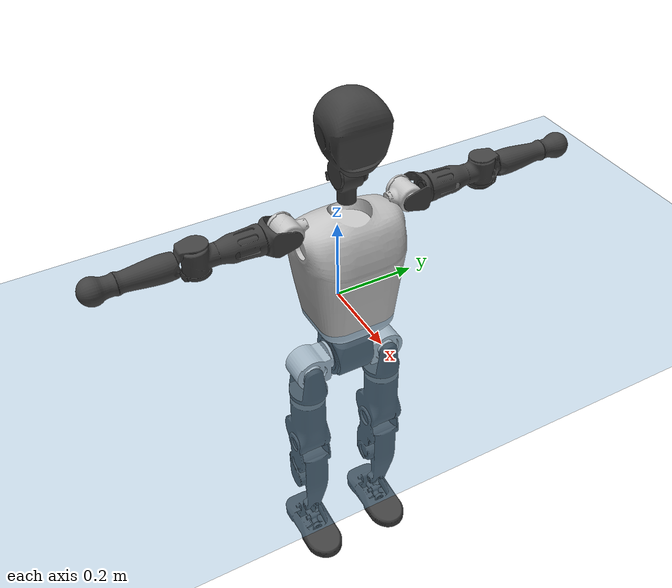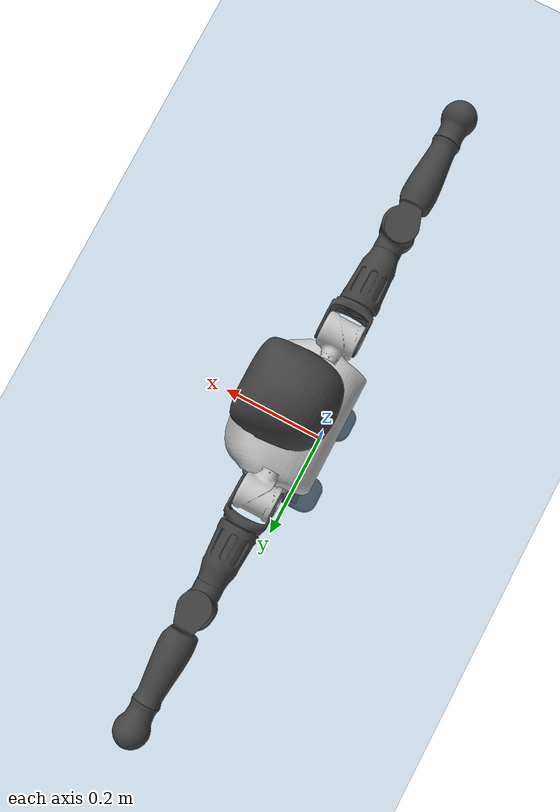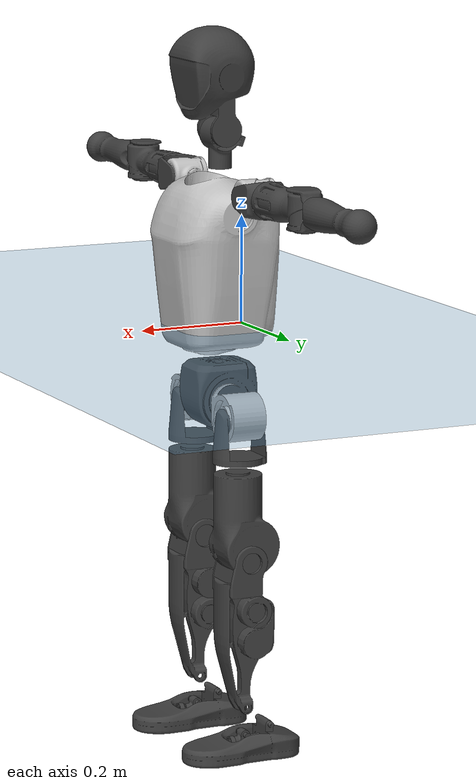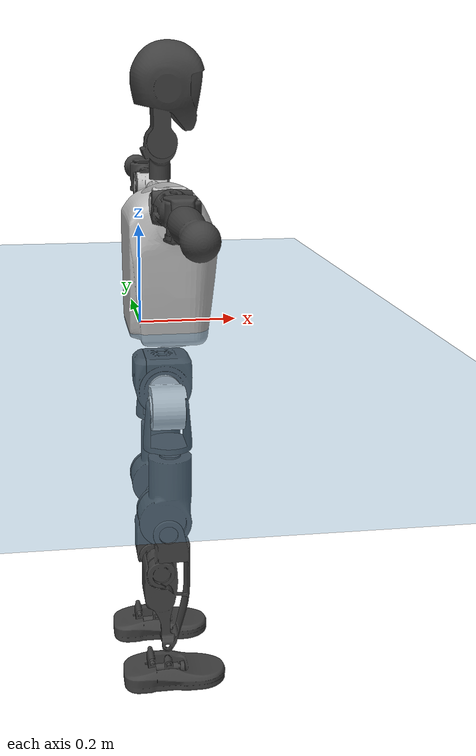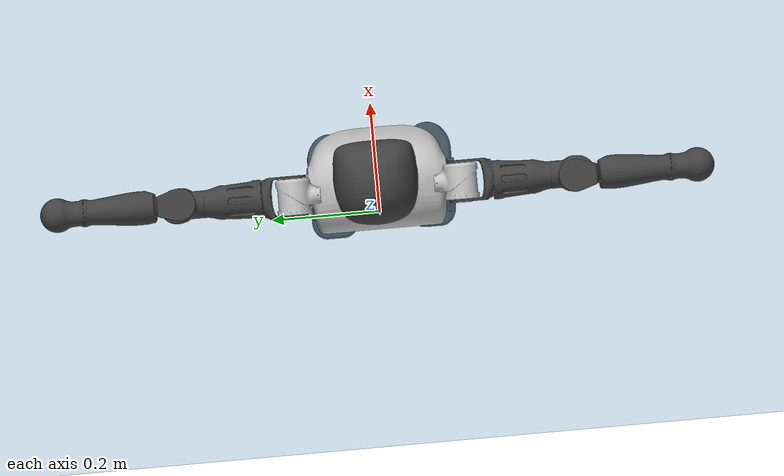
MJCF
<mujoco model="T1">
  <compiler angle="radian" assetdir="assets" balanceinertia="true" inertiafromgeom="false"/>

  <option timestep="0.005" density="1.2" viscosity="2e-05"/>

  <size nkey="1"/>

  <visual>
    <quality shadowsize="8192"/>
    <map shadowclip="0.5"/>
  </visual>

  <default>
    <default class="/">
      <joint armature="0.01" damping="0.01" frictionloss="0.1"/>
      <geom contype="0" conaffinity="0" group="1" solref="-1000 -80"/>
      <site size="0.01 0.005 0.005" group="5"/>
      <general forcelimited="true" biastype="affine" gainprm="25" biasprm="0 -25 -0.6"/>
      <default class="t1">
        <geom rgba="0.25 0.25 0.25 1"/>
        <default class="visual">
          <geom type="mesh" group="2"/>
        </default>
        <default class="collision">
          <geom group="3"/>
        </default>
        <default class="foot">
          <geom size="0.1115 0.05 0.015" type="box" condim="6" group="4" priority="1" solimp="0.015 1 0.015"/>
        </default>
        <default class="reward_collision_sphere">
          <geom group="5" rgba="1 0 0 1"/>
        </default>
      </default>
    </default>
  </default>

  <asset>
    <texture type="skybox" colorspace="auto" name="//unnamed_texture_0" builtin="gradient" rgb1="0.95 0.95 0.95" rgb2="0.95 0.95 0.95" width="100" height="600"/>
    <texture type="2d" colorspace="auto" name="texplane" builtin="checker" rgb1="0.345 0.575 0.748" rgb2="0.345 0.575 0.748" markrgb="1 1 1" width="512" height="512"/>
    <material name="MatPlane" class="/" texture="texplane" texuniform="true" texrepeat="2 2" specular="0.9"/>
    <mesh name="Trunk" class="/" file="Trunk.stl"/>
    <mesh name="H1" class="/" file="H1.stl"/>
    <mesh name="H2" class="/" file="H2.stl"/>
    <mesh name="AL1" class="/" file="AL1.stl"/>
    <mesh name="AL2" class="/" file="AL2.stl"/>
    <mesh name="AL3" class="/" file="AL3.stl"/>
    <mesh name="left_hand_link" class="/" file="left_hand_link.stl"/>
    <mesh name="AR1" class="/" file="AR1.stl"/>
    <mesh name="AR2" class="/" file="AR2.stl"/>
    <mesh name="AR3" class="/" file="AR3.stl"/>
    <mesh name="right_hand_link" class="/" file="right_hand_link.stl"/>
    <mesh name="Waist" class="/" file="Waist.stl"/>
    <mesh name="Hip_Pitch_Left" class="/" file="Hip_Pitch_Left.stl"/>
    <mesh name="Hip_Roll_Left" class="/" file="Hip_Roll_Left.stl"/>
    <mesh name="Hip_Yaw_Left" class="/" file="Hip_Yaw_Left.stl"/>
    <mesh name="Shank_Left" class="/" file="Shank_Left.stl"/>
    <mesh name="Ankle_Cross_Left" class="/" file="Ankle_Cross_Left.stl"/>
    <mesh name="left_foot_link" class="/" file="left_foot_link.stl"/>
    <mesh name="Hip_Pitch_Right" class="/" file="Hip_Pitch_Right.stl"/>
    <mesh name="Hip_Roll_Right" class="/" file="Hip_Roll_Right.stl"/>
    <mesh name="Hip_Yaw_Right" class="/" file="Hip_Yaw_Right.stl"/>
    <mesh name="Shank_Right" class="/" file="Shank_Right.stl"/>
    <mesh name="Ankle_Cross_Right" class="/" file="Ankle_Cross_Right.stl"/>
    <mesh name="right_foot_link" class="/" file="right_foot_link.stl"/>
  </asset>

  <worldbody>
    <geom name="floor" class="/" size="100 100 0.125" type="plane" group="0" material="MatPlane"/>
    <light name="toplight_shadow" class="/" pos="0 0 5" dir="0.0990148 0.0990148 -0.990148" type="directional" ambient="0.04 0.04 0.04" diffuse="0.55 0.55 0.55" specular="0.12 0.12 0.12"/>
    <light name="toplight_fill" class="/" pos="0 0 5" dir="0.0990148 0.0990148 -0.990148" type="directional" castshadow="false" ambient="0.04 0.04 0.04" diffuse="0.3 0.3 0.3" specular="0.08 0.08 0.08"/>
    <body name="trunk" childclass="t1" pos="0.000687063 -0.00241159 -6.05671e-05" quat="0.999999 -0.000759929 0.00066566 -0.000269656">
      <inertial pos="0.0370162 -0.00345778 0.122707" quat="0.999973 -0.00100427 -0.00636823 0.00360334" mass="9.71339" diaginertia="0.0186489 0.0557887 0.127828"/>
      <joint name="//unnamed_joint_0" type="free" armature="0" damping="0" frictionloss="0"/>
      <geom name="//unnamed_geom_1" class="visual" rgba="0.76 0.76 0.76 1" mesh="Trunk"/>
      <geom name="//unnamed_geom_2" class="collision" size="0.0715542 0.0954056 0.143108" pos="0.0437142 0 0.142525" type="box"/>
      <geom name="//unnamed_geom_3" class="reward_collision_sphere" size="0.109716" pos="0.0437142 0 0.118771"/>
      <geom name="//unnamed_geom_4" class="reward_collision_sphere" size="0.0143108" pos="0.0437142 0.0804002 0"/>
      <geom name="//unnamed_geom_5" class="reward_collision_sphere" size="0.0143108" pos="0.0437142 -0.0804002 0"/>
      <geom name="//unnamed_geom_6" class="reward_collision_sphere" size="0.0143108" pos="0.0437142 0.10121 0.213788"/>
      <geom name="//unnamed_geom_7" class="reward_collision_sphere" size="0.0143108" pos="0.0437142 -0.10121 0.213788"/>
      <site name="imu" pos="0.0141841 0.000212358 -0.0141895" size="0.00954056"/>
      <camera name="track" pos="0 -1.89177 0" quat="0.707107 0.707107 0 0" mode="trackcom"/>
      <camera name="ego_camera" pos="0.0888856 0 0.498839" quat="-0.5 -0.5 0.5 0.5"/>
      <body name="H1" pos="0.0421359 0.00195006 0.289908" quat="1 -2.76805e-05 -0.000747607 -0.000372334">
        <inertial pos="-0.00409883 0.000309883 0.0703602" quat="0.757394 -0.0145128 -0.00252328 0.652791" mass="0.393361" diaginertia="5.06025e-05 0.000169859 0.000336936"/>
        <joint name="AAHead_yaw" pos="0 0 0" axis="0.00675478 -0.00753333 0.999949" stiffness="0.00416889" range="-1.58565 1.58332" armature="0.00820121" damping="0.011472" frictionloss="0.0937114"/>
        <geom name="//unnamed_geom_8" class="visual" mesh="H1"/>
        <body name="H2" pos="0.00192111 0.00183546 0.0717243" quat="1 2.9479e-05 2.67532e-05 0.000244217">
          <inertial pos="0.00724731 0.00315405 0.117961" quat="0.988301 0.107715 -0.0764605 -0.0762375" mass="0.556937" diaginertia="0.000436414 0.00149142 0.00411424"/>
          <joint name="Head_pitch" pos="0 0 0" axis="-0.00163503 -0.999953 -0.00953378" range="-1.22036 0.348785" armature="0.00859115" damping="0.0106568" frictionloss="0.100714"/>
          <geom name="//unnamed_geom_9" class="visual" mesh="H2"/>
          <geom name="//unnamed_geom_10" class="collision" size="0.0763245" pos="0.00728571 0 0.130648"/>
          <geom name="//unnamed_geom_11" class="reward_collision_sphere" size="0.085865" pos="0.0145714 0 0.118771"/>
        </body>
      </body>
      <body name="AL1" pos="0.0412724 0.102249 0.258566" quat="1 -0.000186661 0.000469783 -0.000167761">
        <inertial pos="-0.00258987 0.0410916 -0.00069167" quat="0.505491 0.498411 -0.504607 0.491362" mass="0.462184" diaginertia="0.000284394 0.000990971 0.000672836"/>
        <joint name="Left_Shoulder_Pitch" pos="0 0 0" axis="0.00162037 0.999953 -0.00960315" stiffness="0.00662623" range="-3.30657 1.17347" armature="0.00977833" damping="0.0102059" frictionloss="0.0978042"/>
        <geom name="//unnamed_geom_12" class="visual" rgba="0.76 0.76 0.76 1" mesh="AL1"/>
        <body name="AL2" pos="0.000526886 0.0447663 -0.00292697" quat="1 2.08548e-05 -6.73924e-05 3.5383e-05">
          <inertial pos="0.00510051 0.0334797 -0.00284185" quat="0.492426 0.503348 -0.497017 0.507081" mass="0.136873" diaginertia="8.25893e-05 0.000262346 0.000413026"/>
          <joint name="Left_Shoulder_Roll" pos="0 0 0" axis="-0.999942 -0.00382051 0.0100897" range="-1.56755 1.72205" armature="0.00945327" damping="0.00765575" frictionloss="0.0929227"/>
          <geom name="//unnamed_geom_13" class="visual" mesh="AL2"/>
          <body name="AL3" pos="0.00111634 0.05796 0.00232719" quat="1 3.70794e-05 -0.000215596 -5.92745e-05">
            <inertial pos="-0.00334369 0.0805487 -0.00081481" quat="0.702633 0.711512 -7.23845e-05 0.00759488" mass="0.896043" diaginertia="0.002736 0.00973184 0.00145537"/>
            <joint name="Left_Elbow_Pitch" pos="0 0 0" axis="-0.00176715 -0.999995 -0.0024562" range="-2.29527 2.28154" armature="0.00947837" damping="0.015126" frictionloss="0.103489"/>
            <geom name="//unnamed_geom_14" class="visual" mesh="AL3"/>
            <geom name="//unnamed_geom_15" class="collision" size="0.0286217 0.0715542" pos="0 0.0472942 0" quat="0.707105 0.707108 0 0" type="cylinder"/>
            <geom name="//unnamed_geom_16" class="reward_collision_sphere" size="0.034346"/>
            <body name="left_hand_link" pos="0.00264702 0.142242 0.0033768" quat="1 -5.53746e-06 0.000132219 -0.00024228">
              <inertial pos="0.00211842 0.100795 -0.00207163" quat="0.709761 0.704422 0.000424497 -0.00533938" mass="0.284047" diaginertia="0.00167886 0.00621553 0.000525893"/>
              <joint name="Left_Elbow_Yaw" pos="0 0 0" axis="0.00746138 -0.00451469 0.999962" range="-2.43706 -0.00299083" armature="0.0109939" damping="0.0229773" frictionloss="0.0958436"/>
              <geom name="//unnamed_geom_17" class="visual" mesh="left_hand_link"/>
              <geom name="//unnamed_geom_18" class="collision" size="0.0286217 0.0834799" pos="0 0.122965 0" quat="0.707105 0.707108 0 0" type="cylinder"/>
              <geom name="//unnamed_geom_19" class="reward_collision_sphere" size="0.0477028"/>
              <geom name="//unnamed_geom_20" class="reward_collision_sphere" size="0.033392" pos="0 0.104047 0"/>
              <geom name="//unnamed_geom_21" class="reward_collision_sphere" size="0.033392" pos="0 0.203365 0"/>
            </body>
          </body>
        </body>
      </body>
      <body name="AR1" pos="0.0434749 -0.0976031 0.260588" quat="1 -0.000257147 0.000723687 -0.000329868">
        <inertial pos="1.74271e-06 -0.044812 0.002066" quat="0.504098 0.495752 -0.504745 0.495326" mass="0.469638" diaginertia="0.000277304 0.00101529 0.000706211"/>
        <joint name="Right_Shoulder_Pitch" pos="0 0 0" axis="-0.00282703 -0.999996 -0.000691588" stiffness="0.00023642" range="-1.17063 3.31933" armature="0.00897774" damping="0.019045" frictionloss="0.0854244"/>
        <geom name="//unnamed_geom_22" class="visual" rgba="0.76 0.76 0.76 1" mesh="AR1"/>
        <body name="AR2" pos="0.000421724 -0.0453593 -0.00212746" quat="0.999999 0.000245738 -0.00126081 0.000634373">
          <inertial pos="0.000932379 -0.0346157 0.000122739" quat="0.509688 0.493429 -0.518751 0.477119" mass="0.134481" diaginertia="7.91874e-05 0.000260184 0.000399937"/>
          <joint name="Right_Shoulder_Roll" pos="0 0 0" axis="-0.999991 -0.00353229 0.00238103" range="-1.78277 1.52689" armature="0.00964222" damping="0" frictionloss="0.0999251"/>
          <geom name="//unnamed_geom_23" class="visual" mesh="AR2"/>
          <body name="AR3" pos="-0.00347666 -0.0570924 0.000861774" quat="0.999999 0.000982482 -0.000200243 -0.000701483">
            <inertial pos="0.000838371 -0.0816636 0.00218165" quat="0.707013 0.707198 -0.000534671 0.00164148" mass="0.880692" diaginertia="0.00266651 0.00954887 0.00143594"/>
            <joint name="Right_Elbow_Pitch" pos="0 0 0" axis="-0.00282922 0.99992 0.0123317" range="-2.30306 2.25122" armature="0.00947206" damping="0.00831297" frictionloss="0.106684"/>
            <geom name="//unnamed_geom_24" class="visual" mesh="AR3"/>
            <geom name="//unnamed_geom_25" class="collision" size="0.0286217 0.0715542" pos="0 -0.0472942 0" quat="0.707105 0.707108 0 0" type="cylinder"/>
            <geom name="//unnamed_geom_26" class="reward_collision_sphere" size="0.034346"/>
            <body name="right_hand_link" pos="-0.00374257 -0.141869 0.00206655" quat="0.999999 0.00029732 -0.00131173 -0.000380806">
              <inertial pos="0.00123376 -0.102069 -0.00157146" quat="0.70518 0.709025 -0.000709391 0.00196903" mass="0.282185" diaginertia="0.0016259 0.00584117 0.000512368"/>
              <joint name="Right_Elbow_Yaw" pos="0 0 0" axis="0.00125339 -0.00189013 0.999997" range="-0.000945705 2.38816" armature="0.00888491" damping="0.00992941" frictionloss="0.0959222"/>
              <geom name="//unnamed_geom_27" class="visual" mesh="right_hand_link"/>
              <geom name="//unnamed_geom_28" class="collision" size="0.0286217 0.0834799" pos="0 -0.122965 0" quat="0.707105 0.707108 0 0" type="cylinder"/>
              <geom name="//unnamed_geom_29" class="reward_collision_sphere" size="0.0477028"/>
              <geom name="//unnamed_geom_30" class="reward_collision_sphere" size="0.033392" pos="0 -0.104047 0"/>
              <geom name="//unnamed_geom_31" class="reward_collision_sphere" size="0.033392" pos="0 -0.203365 0"/>
            </body>
          </body>
        </body>
      </body>
      <body name="Waist" pos="0.0439906 -0.00203004 -0.134427" quat="1 9.15523e-05 1.49875e-05 -2.77681e-05">
        <inertial pos="0.0023627 0.00220441 0.0095469" quat="0.983545 -0.00839492 -0.180273 -0.00840444" mass="2.09259" diaginertia="0.00105308 0.00374783 0.0104445"/>
        <joint name="Waist" pos="0 0 0" axis="0.00637154 -0.000842549 0.999979" range="-1.61394 1.53262" armature="0.00891948" damping="0.00452084" frictionloss="0.108213"/>
        <geom name="//unnamed_geom_32" class="visual" mesh="Waist"/>
        <body name="Hip_Pitch_Left" pos="0.00426276 0.0985012 -0.001111" quat="1 0.000433791 0.00035312 -0.000332991">
          <inertial pos="-0.000970041 -0.00792988 -0.023943" quat="0.974361 0.224688 0.0112696 -0.00294887" mass="0.850034" diaginertia="0.000360443 0.0010756 0.00287374"/>
          <joint name="Left_Hip_Pitch" pos="0 0 0" axis="0.00185933 0.99988 0.0153895" stiffness="0.0191307" range="-1.8083 1.62213" armature="0.00930394" damping="0" frictionloss="0.0952649"/>
          <geom name="//unnamed_geom_33" class="visual" rgba="0.76 0.76 0.76 1" mesh="Hip_Pitch_Left"/>
          <body name="Hip_Roll_Left" pos="0.00225416 0.00127001 -0.0268469" quat="1 -0.000122932 -5.97016e-06 -0.00010189">
            <inertial pos="0.00150776 -0.000652237 -0.0664004" quat="0.706396 -0.009774 -0.00321403 0.707742" mass="0.340933" diaginertia="0.00037911 0.00114956 0.00122673"/>
            <joint name="Left_Hip_Roll" pos="0 0 0" axis="-0.999914 -0.012561 0.00381533" range="-1.60656 0.243427" armature="0.00909626" damping="0.0170464" frictionloss="0.0904975"/>
            <geom name="//unnamed_geom_34" class="visual" mesh="Hip_Roll_Left"/>
            <geom name="//unnamed_geom_35" class="reward_collision_sphere" size="0.0524731"/>
            <body name="Hip_Yaw_Left" pos="0.00198085 0.00183858 -0.0974815" quat="1 4.49645e-05 0.000320474 -0.000183635">
              <inertial pos="-0.00729237 -0.000787897 -0.104866" quat="0.690417 -0.0295936 -0.0395705 0.721722" mass="1.87111" diaginertia="0.00552128 0.0192979 0.00649867"/>
              <joint name="Left_Hip_Yaw" pos="0 0 0" axis="0.000146304 0.000247854 -1" stiffness="0.00227339" range="-0.992955 1.02718" armature="0.0109241" damping="0.00852035" frictionloss="0.0977438"/>
              <geom name="//unnamed_geom_36" class="visual" mesh="Hip_Yaw_Left"/>
              <geom name="//unnamed_geom_37" class="collision" size="0.0477028 0.0763245" type="cylinder"/>
              <body name="Shank_Left" pos="-0.00921698 -0.000668267 -0.161383" quat="0.999999 0.000728328 -0.000439435 -0.000728924">
                <inertial pos="-0.00380043 0.000163732 -0.150268" quat="0.997521 0.000769869 -0.0244962 0.0659688" mass="1.48807" diaginertia="0.00707782 0.0248955 0.00409461"/>
                <joint name="Left_Knee_Pitch" pos="0 0 0" axis="0.00409718 0.99999 0.00175588" stiffness="0.00580553" range="0.0534528 2.33932" armature="0.00938402" damping="0" frictionloss="0.0915317"/>
                <geom name="//unnamed_geom_38" class="visual" mesh="Shank_Left"/>
                <geom name="//unnamed_geom_39" class="collision" size="0.0477028 0.0715542" pos="0 0 -0.142525" type="cylinder"/>
                <geom name="//unnamed_geom_40" class="reward_collision_sphere" size="0.0620136"/>
                <body name="Ankle_Cross_Left" pos="-0.00242003 -0.00170085 -0.335302" quat="1 -9.58823e-05 -3.99035e-05 -0.000138344">
                  <inertial pos="-0.00462766 0.00211463 -0.00980057" quat="0.440952 0.55173 0.552126 0.443071" mass="0.0615367" diaginertia="6.17719e-06 1.90991e-05 2.69085e-05"/>
                  <joint name="Left_Ankle_Pitch" pos="0 0 0" axis="0.0115144 0.999921 0.00496129" stiffness="0.00794203" range="-0.927513 0.350884" armature="0.0083416" damping="0.0180144" frictionloss="0.108126"/>
                  <geom name="//unnamed_geom_41" class="visual" mesh="Ankle_Cross_Left"/>
                  <body name="left_foot_link" pos="-0.00130137 0.00219241 -0.0129832" quat="1 -0.000772653 -0.000314986 0.000129019">
                    <inertial pos="-0.00218596 0.000367456 -0.0123939" quat="0.00955575 0.614011 0.000871416 0.78924" mass="0.581114" diaginertia="0.000579055 0.00182855 0.0054075"/>
                    <joint name="Left_Ankle_Roll" pos="0 0 0" axis="-0.999993 -0.00299145 0.00237526" range="-0.487097 0.400497" armature="0.0109015" damping="0.0188921" frictionloss="0.0850848"/>
                    <geom name="//unnamed_geom_42" class="visual" mesh="left_foot_link"/>
                    <geom name="left_foot" class="foot" size="0.105262 0.0431778 0.0150202" pos="0.00728571 0 -0.0178157"/>
                    <geom name="//unnamed_geom_44" class="reward_collision_sphere" size="0.0496109" pos="0.00728571 0 -0.0178157"/>
                    <geom name="//unnamed_geom_45" class="reward_collision_sphere" size="0.0286217" pos="0.0692142 -0.0217553 -0.0178157"/>
                    <geom name="//unnamed_geom_46" class="reward_collision_sphere" size="0.0286217" pos="-0.0509999 -0.0217553 -0.0178157"/>
                    <site name="left_foot" class="foot" pos="0.00728571 0 -0.0178157" size="0.00954056"/>
                  </body>
                </body>
              </body>
            </body>
          </body>
        </body>
        <body name="Hip_Pitch_Right" pos="-0.000138967 -0.103195 0.000770037" quat="0.999999 -0.000679351 -0.000724955 -0.000353798">
          <inertial pos="0.00197864 0.00440359 -0.01843" quat="0.972441 -0.232631 0.0154588 -0.00173871" mass="0.887004" diaginertia="0.000373744 0.00115361 0.00305957"/>
          <joint name="Right_Hip_Pitch" pos="0 0 0" axis="0.00286986 -0.999995 -0.00155445" range="-1.60036 1.7858" armature="0.0110287" damping="0.0074004" frictionloss="0.0861435"/>
          <geom name="//unnamed_geom_47" class="visual" rgba="0.76 0.76 0.76 1" mesh="Hip_Pitch_Right"/>
          <body name="Hip_Roll_Right" pos="0.00154478 -0.00224633 -0.0255212" quat="1 -7.27467e-05 -9.49674e-05 -7.21203e-05">
            <inertial pos="0.00225106 0.0014167 -0.0608574" quat="0.709426 -0.0072051 -0.00755976 0.704703" mass="0.354346" diaginertia="0.000368437 0.00122823 0.00125241"/>
            <joint name="Right_Hip_Roll" pos="0 0 0" axis="-0.999888 0.0104581 -0.0106968" stiffness="0.00465852" range="-0.202253 1.54161" armature="0.009169" damping="0" frictionloss="0.0865895"/>
            <geom name="//unnamed_geom_48" class="visual" mesh="Hip_Roll_Right"/>
            <geom name="//unnamed_geom_49" class="reward_collision_sphere" size="0.0524731"/>
            <body name="Hip_Yaw_Right" pos="0.00192659 -0.00346606 -0.0951921" quat="0.999999 0.000168859 -0.00108228 8.75747e-05">
              <inertial pos="-0.00406712 -0.00347405 -0.10334" quat="0.717144 -0.0318492 -0.0289992 0.695592" mass="1.922" diaginertia="0.00517125 0.0197692 0.00598778"/>
              <joint name="Right_Hip_Yaw" pos="0 0 0" axis="-0.00263783 0.00417228 -0.999988" stiffness="0.0129503" range="-1.00448 1.00781" armature="0.00811852" damping="0.0150963" frictionloss="0.0904149"/>
              <geom name="//unnamed_geom_50" class="visual" mesh="Hip_Yaw_Right"/>
              <geom name="//unnamed_geom_51" class="collision" size="0.0477028 0.0763245" type="cylinder"/>
              <body name="Shank_Right" pos="-0.00836995 0.00217546 -0.160906" quat="0.999999 0.000426184 0.00122163 -0.000793378">
                <inertial pos="-0.00211387 -0.00149744 -0.14584" quat="0.998855 -0.00192127 -0.0267658 -0.0396077" mass="1.48037" diaginertia="0.00730317 0.0257171 0.00470078"/>
                <joint name="Right_Knee_Pitch" pos="0 0 0" axis="0.00206035 -0.999997 0.00092079" range="-2.3524 0.0552293" armature="0.00943876" damping="0.019351" frictionloss="0.0997188"/>
                <geom name="//unnamed_geom_52" class="visual" mesh="Shank_Right"/>
                <geom name="//unnamed_geom_53" class="collision" size="0.0477028 0.0715542" pos="0 0 -0.142525" type="cylinder"/>
                <geom name="//unnamed_geom_54" class="reward_collision_sphere" size="0.0620136"/>
                <body name="Ankle_Cross_Right" pos="0.00356694 0.00134738 -0.333666" quat="0.999999 0.000396446 -0.00074931 -0.000861178">
                  <inertial pos="-0.00152726 0.0029163 -0.00913636" quat="0.442844 0.550953 0.551246 0.443246" mass="0.063927" diaginertia="5.9028e-06 1.95402e-05 2.59626e-05"/>
                  <joint name="Right_Ankle_Pitch" pos="0 0 0" axis="0.00899253 -0.999914 0.00953988" stiffness="0.00523112" range="-0.370915 0.874073" armature="0.00900509" damping="0.0111116" frictionloss="0.0990101"/>
                  <geom name="//unnamed_geom_55" class="visual" mesh="Ankle_Cross_Right"/>
                  <body name="right_foot_link" pos="0.0033128 -0.00201069 -0.0124107" quat="1 -8.60827e-05 5.18984e-05 -0.000132376">
                    <inertial pos="-0.000264 0.00261217 -0.0109631" quat="0.00779971 0.625012 0.00702056 0.780544" mass="0.622263" diaginertia="0.000570083 0.0018634 0.00542566"/>
                    <joint name="Right_Ankle_Roll" pos="0 0 0" axis="-1 -0.000351394 0.000503219" stiffness="0.00101908" range="-0.429832 0.386109" armature="0.00918772" damping="0.00819175" frictionloss="0.0875091"/>
                    <geom name="//unnamed_geom_56" class="visual" mesh="right_foot_link"/>
                    <geom name="right_foot" class="foot" size="0.0973911 0.0493861 0.0148236" pos="0.00728571 0 -0.0178157"/>
                    <geom name="//unnamed_geom_58" class="reward_collision_sphere" size="0.0381622"/>
                    <geom name="//unnamed_geom_59" class="reward_collision_sphere" size="0.0286217" pos="0.00728571 0 -0.0178157"/>
                    <geom name="//unnamed_geom_60" class="reward_collision_sphere" size="0.0286217" pos="0.0692142 0.0217553 -0.0178157"/>
                    <geom name="//unnamed_geom_61" class="reward_collision_sphere" size="0.0286217" pos="-0.0509999 0.0217553 -0.0178157"/>
                    <site name="right_foot" class="foot" pos="0.00728571 0 -0.0178157" size="0.00954056"/>
                  </body>
                </body>
              </body>
            </body>
          </body>
        </body>
      </body>
    </body>
  </worldbody>

  <contact>
    <pair class="/" geom1="floor" geom2="left_foot" name="//unnamed_contact_0"/>
    <pair class="/" geom1="floor" geom2="right_foot" name="//unnamed_contact_1"/>
  </contact>

  <actuator>
    <general name="AAHead_yaw" class="/" joint="AAHead_yaw" forcerange="-6.44122 6.44122" gainprm="22.8681" biasprm="0 -22.8681 -0.599577"/>
    <general name="Head_pitch" class="/" joint="Head_pitch" forcerange="-6.92962 6.92962" gainprm="22.8681" biasprm="0 -22.8681 -0.599577"/>
    <general name="Left_Shoulder_Pitch" class="/" joint="Left_Shoulder_Pitch" forcerange="-16.4653 16.4653" gainprm="22.8681" biasprm="0 -22.8681 -0.599577"/>
    <general name="Left_Shoulder_Roll" class="/" joint="Left_Shoulder_Roll" forcerange="-16.7067 16.7067" gainprm="22.8681" biasprm="0 -22.8681 -0.599577"/>
    <general name="Left_Elbow_Pitch" class="/" joint="Left_Elbow_Pitch" forcerange="-15.7353 15.7353" gainprm="22.8681" biasprm="0 -22.8681 -0.599577"/>
    <general name="Left_Elbow_Yaw" class="/" joint="Left_Elbow_Yaw" forcerange="-17.1787 17.1787" gainprm="22.8681" biasprm="0 -22.8681 -0.599577"/>
    <general name="Right_Shoulder_Pitch" class="/" joint="Right_Shoulder_Pitch" forcerange="-17.4671 17.4671" gainprm="22.8681" biasprm="0 -22.8681 -0.599577"/>
    <general name="Right_Shoulder_Roll" class="/" joint="Right_Shoulder_Roll" forcerange="-16.9619 16.9619" gainprm="22.8681" biasprm="0 -22.8681 -0.599577"/>
    <general name="Right_Elbow_Pitch" class="/" joint="Right_Elbow_Pitch" forcerange="-15.5385 15.5385" gainprm="22.8681" biasprm="0 -22.8681 -0.599577"/>
    <general name="Right_Elbow_Yaw" class="/" joint="Right_Elbow_Yaw" forcerange="-15.4577 15.4577" gainprm="22.8681" biasprm="0 -22.8681 -0.599577"/>
    <general name="Waist" class="/" joint="Waist" forcerange="-26.0804 26.0804" gainprm="22.8681" biasprm="0 -22.8681 -0.599577"/>
    <general name="Left_Hip_Pitch" class="/" joint="Left_Hip_Pitch" forcerange="-44.3857 44.3857" gainprm="22.8681" biasprm="0 -22.8681 -0.599577"/>
    <general name="Left_Hip_Roll" class="/" joint="Left_Hip_Roll" forcerange="-26.0117 26.0117" gainprm="22.8681" biasprm="0 -22.8681 -0.599577"/>
    <general name="Left_Hip_Yaw" class="/" joint="Left_Hip_Yaw" forcerange="-26.0021 26.0021" gainprm="22.8681" biasprm="0 -22.8681 -0.599577"/>
    <general name="Left_Knee_Pitch" class="/" joint="Left_Knee_Pitch" forcerange="-60.5729 60.5729" gainprm="22.8681" biasprm="0 -22.8681 -0.599577"/>
    <general name="Left_Ankle_Pitch" class="/" joint="Left_Ankle_Pitch" forcerange="-20.3979 20.3979" gainprm="22.8681" biasprm="0 -22.8681 -0.599577"/>
    <general name="Left_Ankle_Roll" class="/" joint="Left_Ankle_Roll" forcerange="-13.0546 13.0546" gainprm="22.8681" biasprm="0 -22.8681 -0.599577"/>
    <general name="Right_Hip_Pitch" class="/" joint="Right_Hip_Pitch" forcerange="-41.8999 41.8999" gainprm="22.8681" biasprm="0 -22.8681 -0.599577"/>
    <general name="Right_Hip_Roll" class="/" joint="Right_Hip_Roll" forcerange="-31.0696 31.0696" gainprm="22.8681" biasprm="0 -22.8681 -0.599577"/>
    <general name="Right_Hip_Yaw" class="/" joint="Right_Hip_Yaw" forcerange="-25.6345 25.6345" gainprm="22.8681" biasprm="0 -22.8681 -0.599577"/>
    <general name="Right_Knee_Pitch" class="/" joint="Right_Knee_Pitch" forcerange="-51.0334 51.0334" gainprm="22.8681" biasprm="0 -22.8681 -0.599577"/>
    <general name="Right_Ankle_Pitch" class="/" joint="Right_Ankle_Pitch" forcerange="-19.581 19.581" gainprm="22.8681" biasprm="0 -22.8681 -0.599577"/>
    <general name="Right_Ankle_Roll" class="/" joint="Right_Ankle_Roll" forcerange="-15.7265 15.7265" gainprm="22.8681" biasprm="0 -22.8681 -0.599577"/>
  </actuator>

  <sensor>
    <gyro site="imu" name="imu_angular_velocity"/>
    <velocimeter site="imu" name="imu_linear_velocity"/>
    <framelinvel objtype="site" objname="left_foot" name="left_foot_global_linear_velocity"/>
    <framelinvel objtype="site" objname="right_foot" name="right_foot_global_linear_velocity"/>
  </sensor>

  <keyframe>
    <key name="home" qpos="0 0 0.6385 1 0 0 0 0 0 0 1.4 0 -0.4 0 -1.4 0 0.4 0 -0.4 0 0 0.8 -0.4 0 0.4 0 0 -0.8 0.4 0"/>
  </keyframe>
</mujoco>
